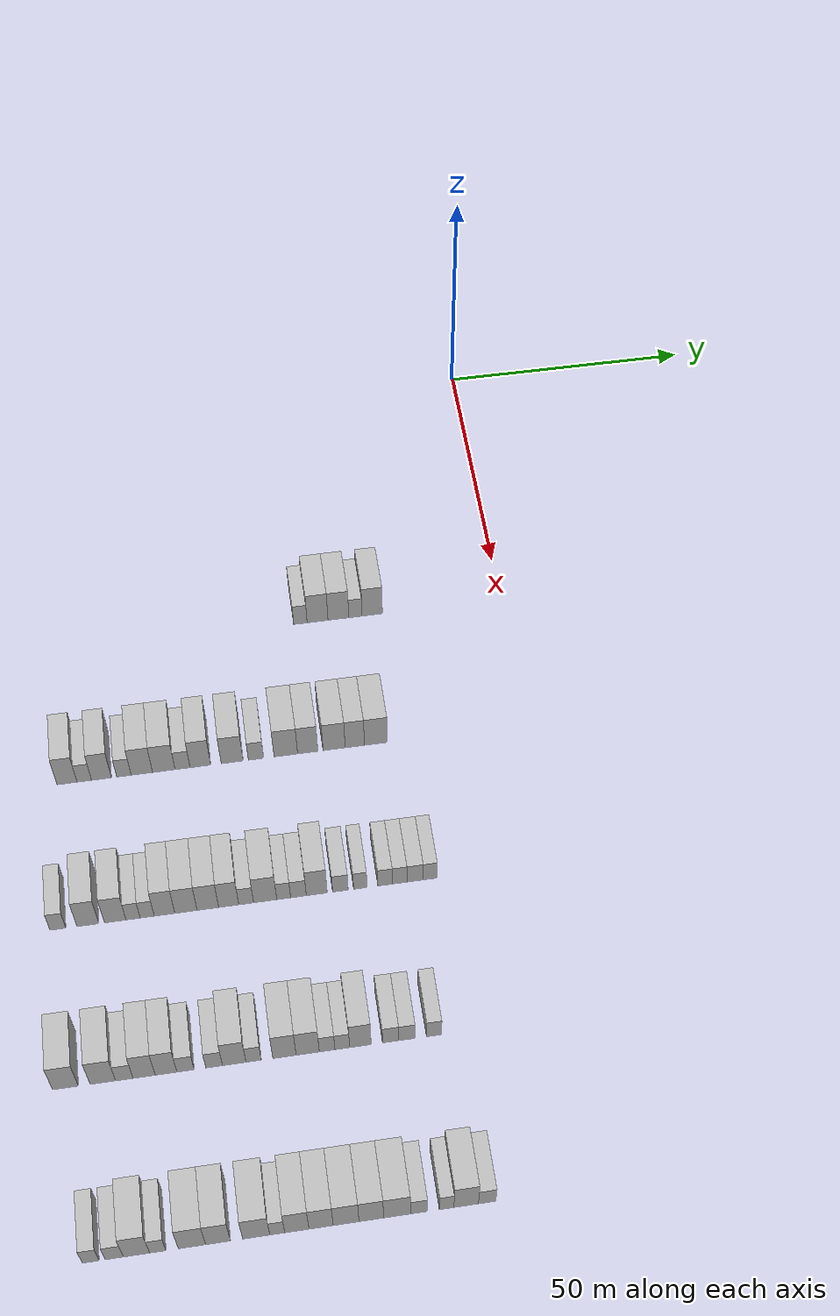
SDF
<sdf version="1.6">
 <world name="default">
  <model name="building_346">
   <static>1</static>
   <pose>55.0000 -40.5637 0 0.000000 0.000000 0.000000</pose>
   <link name="link">
    <pose>0 0 3.00 0 0 0</pose>
    <collision name="collision"><geometry><box><size>10.0000 2.6959 6.0000</size></box></geometry></collision>
    <visual name="visual">
     <cast_shadows>0</cast_shadows>
     <geometry><box><size>10.0000 2.6959 6.0000</size></box></geometry>
     <material>
      <script>
       <uri>model://HANNAS_wall/materials/scripts</uri>
       <uri>model://HANNAS_wall/materials/textures</uri>
       <name>vrc/HANNAS_wall</name>
      </script>
     </material>
    </visual>
   </link>
  </model>
  <model name="building_347">
   <static>1</static>
   <pose>55.0000 -37.1102 0 0.000000 0.000000 0.000000</pose>
   <link name="link">
    <pose>0 0 4.50 0 0 0</pose>
    <collision name="collision"><geometry><box><size>10.0000 4.2112 9.0000</size></box></geometry></collision>
    <visual name="visual">
     <cast_shadows>0</cast_shadows>
     <geometry><box><size>10.0000 4.2112 9.0000</size></box></geometry>
     <material>
      <script>
       <uri>model://HANNAS_wall/materials/scripts</uri>
       <uri>model://HANNAS_wall/materials/textures</uri>
       <name>vrc/HANNAS_wall</name>
      </script>
     </material>
    </visual>
   </link>
  </model>
  <model name="building_348">
   <static>1</static>
   <pose>55.0000 -32.9079 0 0.000000 0.000000 0.000000</pose>
   <link name="link">
    <pose>0 0 4.50 0 0 0</pose>
    <collision name="collision"><geometry><box><size>10.0000 4.1934 9.0000</size></box></geometry></collision>
    <visual name="visual">
     <cast_shadows>0</cast_shadows>
     <geometry><box><size>10.0000 4.1934 9.0000</size></box></geometry>
     <material>
      <script>
       <uri>model://HANNAS_wall/materials/scripts</uri>
       <uri>model://HANNAS_wall/materials/textures</uri>
       <name>vrc/HANNAS_wall</name>
      </script>
     </material>
    </visual>
   </link>
  </model>
  <model name="building_349">
   <static>1</static>
   <pose>55.0000 -29.4674 0 0.000000 0.000000 0.000000</pose>
   <link name="link">
    <pose>0 0 3.00 0 0 0</pose>
    <collision name="collision"><geometry><box><size>10.0000 2.6874 6.0000</size></box></geometry></collision>
    <visual name="visual">
     <cast_shadows>0</cast_shadows>
     <geometry><box><size>10.0000 2.6874 6.0000</size></box></geometry>
     <material>
      <script>
       <uri>model://HANNAS_wall/materials/scripts</uri>
       <uri>model://HANNAS_wall/materials/textures</uri>
       <name>vrc/HANNAS_wall</name>
      </script>
     </material>
    </visual>
   </link>
  </model>
  <model name="building_350">
   <static>1</static>
   <pose>55.0000 -26.0680 0 0.000000 0.000000 0.000000</pose>
   <link name="link">
    <pose>0 0 4.50 0 0 0</pose>
    <collision name="collision"><geometry><box><size>10.0000 4.1113 9.0000</size></box></geometry></collision>
    <visual name="visual">
     <cast_shadows>0</cast_shadows>
     <geometry><box><size>10.0000 4.1113 9.0000</size></box></geometry>
     <material>
      <script>
       <uri>model://HANNAS_wall/materials/scripts</uri>
       <uri>model://HANNAS_wall/materials/textures</uri>
       <name>vrc/HANNAS_wall</name>
      </script>
     </material>
    </visual>
   </link>
  </model>
  <model name="building_565">
   <static>1</static>
   <pose>85.0000 -88.3537 0 0.000000 0.000000 0.000000</pose>
   <link name="link">
    <pose>0 0 4.50 0 0 0</pose>
    <collision name="collision"><geometry><box><size>10.0000 3.7554 9.0000</size></box></geometry></collision>
    <visual name="visual">
     <cast_shadows>0</cast_shadows>
     <geometry><box><size>10.0000 3.7554 9.0000</size></box></geometry>
     <material>
      <script>
       <uri>model://HANNAS_wall/materials/scripts</uri>
       <uri>model://HANNAS_wall/materials/textures</uri>
       <name>vrc/HANNAS_wall</name>
      </script>
     </material>
    </visual>
   </link>
  </model>
  <model name="building_566">
   <static>1</static>
   <pose>85.0000 -85.1108 0 0.000000 0.000000 0.000000</pose>
   <link name="link">
    <pose>0 0 3.00 0 0 0</pose>
    <collision name="collision"><geometry><box><size>10.0000 2.7306 6.0000</size></box></geometry></collision>
    <visual name="visual">
     <cast_shadows>0</cast_shadows>
     <geometry><box><size>10.0000 2.7306 6.0000</size></box></geometry>
     <material>
      <script>
       <uri>model://HANNAS_wall/materials/scripts</uri>
       <uri>model://HANNAS_wall/materials/textures</uri>
       <name>vrc/HANNAS_wall</name>
      </script>
     </material>
    </visual>
   </link>
  </model>
  <model name="building_567">
   <static>1</static>
   <pose>85.0000 -81.8662 0 0.000000 0.000000 0.000000</pose>
   <link name="link">
    <pose>0 0 4.50 0 0 0</pose>
    <collision name="collision"><geometry><box><size>10.0000 3.7585 9.0000</size></box></geometry></collision>
    <visual name="visual">
     <cast_shadows>0</cast_shadows>
     <geometry><box><size>10.0000 3.7585 9.0000</size></box></geometry>
     <material>
      <script>
       <uri>model://HANNAS_wall/materials/scripts</uri>
       <uri>model://HANNAS_wall/materials/textures</uri>
       <name>vrc/HANNAS_wall</name>
      </script>
     </material>
    </visual>
   </link>
  </model>
  <model name="building_568">
   <static>1</static>
   <pose>85.0000 -77.6316 0 0.000000 0.000000 0.000000</pose>
   <link name="link">
    <pose>0 0 3.00 0 0 0</pose>
    <collision name="collision"><geometry><box><size>10.0000 2.7109 6.0000</size></box></geometry></collision>
    <visual name="visual">
     <cast_shadows>0</cast_shadows>
     <geometry><box><size>10.0000 2.7109 6.0000</size></box></geometry>
     <material>
      <script>
       <uri>model://HANNAS_wall/materials/scripts</uri>
       <uri>model://HANNAS_wall/materials/textures</uri>
       <name>vrc/HANNAS_wall</name>
      </script>
     </material>
    </visual>
   </link>
  </model>
  <model name="building_569">
   <static>1</static>
   <pose>85.0000 -74.2416 0 0.000000 0.000000 0.000000</pose>
   <link name="link">
    <pose>0 0 4.50 0 0 0</pose>
    <collision name="collision"><geometry><box><size>10.0000 4.0692 9.0000</size></box></geometry></collision>
    <visual name="visual">
     <cast_shadows>0</cast_shadows>
     <geometry><box><size>10.0000 4.0692 9.0000</size></box></geometry>
     <material>
      <script>
       <uri>model://HANNAS_wall/materials/scripts</uri>
       <uri>model://HANNAS_wall/materials/textures</uri>
       <name>vrc/HANNAS_wall</name>
      </script>
     </material>
    </visual>
   </link>
  </model>
  <model name="building_570">
   <static>1</static>
   <pose>85.0000 -70.0802 0 0.000000 0.000000 0.000000</pose>
   <link name="link">
    <pose>0 0 4.50 0 0 0</pose>
    <collision name="collision"><geometry><box><size>10.0000 4.2537 9.0000</size></box></geometry></collision>
    <visual name="visual">
     <cast_shadows>0</cast_shadows>
     <geometry><box><size>10.0000 4.2537 9.0000</size></box></geometry>
     <material>
      <script>
       <uri>model://HANNAS_wall/materials/scripts</uri>
       <uri>model://HANNAS_wall/materials/textures</uri>
       <name>vrc/HANNAS_wall</name>
      </script>
     </material>
    </visual>
   </link>
  </model>
  <model name="building_571">
   <static>1</static>
   <pose>85.0000 -66.5312 0 0.000000 0.000000 0.000000</pose>
   <link name="link">
    <pose>0 0 3.00 0 0 0</pose>
    <collision name="collision"><geometry><box><size>10.0000 2.8442 6.0000</size></box></geometry></collision>
    <visual name="visual">
     <cast_shadows>0</cast_shadows>
     <geometry><box><size>10.0000 2.8442 6.0000</size></box></geometry>
     <material>
      <script>
       <uri>model://HANNAS_wall/materials/scripts</uri>
       <uri>model://HANNAS_wall/materials/textures</uri>
       <name>vrc/HANNAS_wall</name>
      </script>
     </material>
    </visual>
   </link>
  </model>
  <model name="building_572">
   <static>1</static>
   <pose>85.0000 -63.1409 0 0.000000 0.000000 0.000000</pose>
   <link name="link">
    <pose>0 0 4.50 0 0 0</pose>
    <collision name="collision"><geometry><box><size>10.0000 3.9364 9.0000</size></box></geometry></collision>
    <visual name="visual">
     <cast_shadows>0</cast_shadows>
     <geometry><box><size>10.0000 3.9364 9.0000</size></box></geometry>
     <material>
      <script>
       <uri>model://HANNAS_wall/materials/scripts</uri>
       <uri>model://HANNAS_wall/materials/textures</uri>
       <name>vrc/HANNAS_wall</name>
      </script>
     </material>
    </visual>
   </link>
  </model>
  <model name="building_573">
   <static>1</static>
   <pose>85.0000 -57.0785 0 0.000000 0.000000 0.000000</pose>
   <link name="link">
    <pose>0 0 4.50 0 0 0</pose>
    <collision name="collision"><geometry><box><size>10.0000 4.1883 9.0000</size></box></geometry></collision>
    <visual name="visual">
     <cast_shadows>0</cast_shadows>
     <geometry><box><size>10.0000 4.1883 9.0000</size></box></geometry>
     <material>
      <script>
       <uri>model://HANNAS_wall/materials/scripts</uri>
       <uri>model://HANNAS_wall/materials/textures</uri>
       <name>vrc/HANNAS_wall</name>
      </script>
     </material>
    </visual>
   </link>
  </model>
  <model name="building_574">
   <static>1</static>
   <pose>85.0000 -52.5290 0 0.000000 0.000000 0.000000</pose>
   <link name="link">
    <pose>0 0 3.00 0 0 0</pose>
    <collision name="collision"><geometry><box><size>10.0000 2.9108 6.0000</size></box></geometry></collision>
    <visual name="visual">
     <cast_shadows>0</cast_shadows>
     <geometry><box><size>10.0000 2.9108 6.0000</size></box></geometry>
     <material>
      <script>
       <uri>model://HANNAS_wall/materials/scripts</uri>
       <uri>model://HANNAS_wall/materials/textures</uri>
       <name>vrc/HANNAS_wall</name>
      </script>
     </material>
    </visual>
   </link>
  </model>
  <model name="building_575">
   <static>1</static>
   <pose>85.0000 -46.8241 0 0.000000 0.000000 0.000000</pose>
   <link name="link">
    <pose>0 0 4.50 0 0 0</pose>
    <collision name="collision"><geometry><box><size>10.0000 4.4990 9.0000</size></box></geometry></collision>
    <visual name="visual">
     <cast_shadows>0</cast_shadows>
     <geometry><box><size>10.0000 4.4990 9.0000</size></box></geometry>
     <material>
      <script>
       <uri>model://HANNAS_wall/materials/scripts</uri>
       <uri>model://HANNAS_wall/materials/textures</uri>
       <name>vrc/HANNAS_wall</name>
      </script>
     </material>
    </visual>
   </link>
  </model>
  <model name="building_576">
   <static>1</static>
   <pose>85.0000 -42.6220 0 0.000000 0.000000 0.000000</pose>
   <link name="link">
    <pose>0 0 4.50 0 0 0</pose>
    <collision name="collision"><geometry><box><size>10.0000 3.9051 9.0000</size></box></geometry></collision>
    <visual name="visual">
     <cast_shadows>0</cast_shadows>
     <geometry><box><size>10.0000 3.9051 9.0000</size></box></geometry>
     <material>
      <script>
       <uri>model://HANNAS_wall/materials/scripts</uri>
       <uri>model://HANNAS_wall/materials/textures</uri>
       <name>vrc/HANNAS_wall</name>
      </script>
     </material>
    </visual>
   </link>
  </model>
  <model name="building_577">
   <static>1</static>
   <pose>85.0000 -37.5436 0 0.000000 0.000000 0.000000</pose>
   <link name="link">
    <pose>0 0 4.50 0 0 0</pose>
    <collision name="collision"><geometry><box><size>10.0000 4.2519 9.0000</size></box></geometry></collision>
    <visual name="visual">
     <cast_shadows>0</cast_shadows>
     <geometry><box><size>10.0000 4.2519 9.0000</size></box></geometry>
     <material>
      <script>
       <uri>model://HANNAS_wall/materials/scripts</uri>
       <uri>model://HANNAS_wall/materials/textures</uri>
       <name>vrc/HANNAS_wall</name>
      </script>
     </material>
    </visual>
   </link>
  </model>
  <model name="building_578">
   <static>1</static>
   <pose>85.0000 -33.5626 0 0.000000 0.000000 0.000000</pose>
   <link name="link">
    <pose>0 0 4.50 0 0 0</pose>
    <collision name="collision"><geometry><box><size>10.0000 3.7102 9.0000</size></box></geometry></collision>
    <visual name="visual">
     <cast_shadows>0</cast_shadows>
     <geometry><box><size>10.0000 3.7102 9.0000</size></box></geometry>
     <material>
      <script>
       <uri>model://HANNAS_wall/materials/scripts</uri>
       <uri>model://HANNAS_wall/materials/textures</uri>
       <name>vrc/HANNAS_wall</name>
      </script>
     </material>
    </visual>
   </link>
  </model>
  <model name="building_579">
   <static>1</static>
   <pose>85.0000 -29.5006 0 0.000000 0.000000 0.000000</pose>
   <link name="link">
    <pose>0 0 4.50 0 0 0</pose>
    <collision name="collision"><geometry><box><size>10.0000 4.4138 9.0000</size></box></geometry></collision>
    <visual name="visual">
     <cast_shadows>0</cast_shadows>
     <geometry><box><size>10.0000 4.4138 9.0000</size></box></geometry>
     <material>
      <script>
       <uri>model://HANNAS_wall/materials/scripts</uri>
       <uri>model://HANNAS_wall/materials/textures</uri>
       <name>vrc/HANNAS_wall</name>
      </script>
     </material>
    </visual>
   </link>
  </model>
  <model name="building_805">
   <static>1</static>
   <pose>115.0000 -91.3282 0 0.000000 0.000000 0.000000</pose>
   <link name="link">
    <pose>0 0 3.00 0 0 0</pose>
    <collision name="collision"><geometry><box><size>10.0000 2.8393 6.0000</size></box></geometry></collision>
    <visual name="visual">
     <cast_shadows>0</cast_shadows>
     <geometry><box><size>10.0000 2.8393 6.0000</size></box></geometry>
     <material>
      <script>
       <uri>model://HANNAS_wall/materials/scripts</uri>
       <uri>model://HANNAS_wall/materials/textures</uri>
       <name>vrc/HANNAS_wall</name>
      </script>
     </material>
    </visual>
   </link>
  </model>
  <model name="building_806">
   <static>1</static>
   <pose>115.0000 -85.9426 0 0.000000 0.000000 0.000000</pose>
   <link name="link">
    <pose>0 0 4.50 0 0 0</pose>
    <collision name="collision"><geometry><box><size>10.0000 3.9321 9.0000</size></box></geometry></collision>
    <visual name="visual">
     <cast_shadows>0</cast_shadows>
     <geometry><box><size>10.0000 3.9321 9.0000</size></box></geometry>
     <material>
      <script>
       <uri>model://HANNAS_wall/materials/scripts</uri>
       <uri>model://HANNAS_wall/materials/textures</uri>
       <name>vrc/HANNAS_wall</name>
      </script>
     </material>
    </visual>
   </link>
  </model>
  <model name="building_807">
   <static>1</static>
   <pose>115.0000 -81.0414 0 0.000000 0.000000 0.000000</pose>
   <link name="link">
    <pose>0 0 4.50 0 0 0</pose>
    <collision name="collision"><geometry><box><size>10.0000 3.8702 9.0000</size></box></geometry></collision>
    <visual name="visual">
     <cast_shadows>0</cast_shadows>
     <geometry><box><size>10.0000 3.8702 9.0000</size></box></geometry>
     <material>
      <script>
       <uri>model://HANNAS_wall/materials/scripts</uri>
       <uri>model://HANNAS_wall/materials/textures</uri>
       <name>vrc/HANNAS_wall</name>
      </script>
     </material>
    </visual>
   </link>
  </model>
  <model name="building_808">
   <static>1</static>
   <pose>115.0000 -77.8341 0 0.000000 0.000000 0.000000</pose>
   <link name="link">
    <pose>0 0 3.00 0 0 0</pose>
    <collision name="collision"><geometry><box><size>10.0000 2.5444 6.0000</size></box></geometry></collision>
    <visual name="visual">
     <cast_shadows>0</cast_shadows>
     <geometry><box><size>10.0000 2.5444 6.0000</size></box></geometry>
     <material>
      <script>
       <uri>model://HANNAS_wall/materials/scripts</uri>
       <uri>model://HANNAS_wall/materials/textures</uri>
       <name>vrc/HANNAS_wall</name>
      </script>
     </material>
    </visual>
   </link>
  </model>
  <model name="building_809">
   <static>1</static>
   <pose>115.0000 -75.2893 0 0.000000 0.000000 0.000000</pose>
   <link name="link">
    <pose>0 0 3.00 0 0 0</pose>
    <collision name="collision"><geometry><box><size>10.0000 2.5452 6.0000</size></box></geometry></collision>
    <visual name="visual">
     <cast_shadows>0</cast_shadows>
     <geometry><box><size>10.0000 2.5452 6.0000</size></box></geometry>
     <material>
      <script>
       <uri>model://HANNAS_wall/materials/scripts</uri>
       <uri>model://HANNAS_wall/materials/textures</uri>
       <name>vrc/HANNAS_wall</name>
      </script>
     </material>
    </visual>
   </link>
  </model>
  <model name="building_810">
   <static>1</static>
   <pose>115.0000 -72.1649 0 0.000000 0.000000 0.000000</pose>
   <link name="link">
    <pose>0 0 4.50 0 0 0</pose>
    <collision name="collision"><geometry><box><size>10.0000 3.7036 9.0000</size></box></geometry></collision>
    <visual name="visual">
     <cast_shadows>0</cast_shadows>
     <geometry><box><size>10.0000 3.7036 9.0000</size></box></geometry>
     <material>
      <script>
       <uri>model://HANNAS_wall/materials/scripts</uri>
       <uri>model://HANNAS_wall/materials/textures</uri>
       <name>vrc/HANNAS_wall</name>
      </script>
     </material>
    </visual>
   </link>
  </model>
  <model name="building_811">
   <static>1</static>
   <pose>115.0000 -68.3002 0 0.000000 0.000000 0.000000</pose>
   <link name="link">
    <pose>0 0 4.50 0 0 0</pose>
    <collision name="collision"><geometry><box><size>10.0000 4.0259 9.0000</size></box></geometry></collision>
    <visual name="visual">
     <cast_shadows>0</cast_shadows>
     <geometry><box><size>10.0000 4.0259 9.0000</size></box></geometry>
     <material>
      <script>
       <uri>model://HANNAS_wall/materials/scripts</uri>
       <uri>model://HANNAS_wall/materials/textures</uri>
       <name>vrc/HANNAS_wall</name>
      </script>
     </material>
    </visual>
   </link>
  </model>
  <model name="building_812">
   <static>1</static>
   <pose>115.0000 -64.3250 0 0.000000 0.000000 0.000000</pose>
   <link name="link">
    <pose>0 0 4.50 0 0 0</pose>
    <collision name="collision"><geometry><box><size>10.0000 3.9246 9.0000</size></box></geometry></collision>
    <visual name="visual">
     <cast_shadows>0</cast_shadows>
     <geometry><box><size>10.0000 3.9246 9.0000</size></box></geometry>
     <material>
      <script>
       <uri>model://HANNAS_wall/materials/scripts</uri>
       <uri>model://HANNAS_wall/materials/textures</uri>
       <name>vrc/HANNAS_wall</name>
      </script>
     </material>
    </visual>
   </link>
  </model>
  <model name="building_813">
   <static>1</static>
   <pose>115.0000 -60.5498 0 0.000000 0.000000 0.000000</pose>
   <link name="link">
    <pose>0 0 4.50 0 0 0</pose>
    <collision name="collision"><geometry><box><size>10.0000 3.6258 9.0000</size></box></geometry></collision>
    <visual name="visual">
     <cast_shadows>0</cast_shadows>
     <geometry><box><size>10.0000 3.6258 9.0000</size></box></geometry>
     <material>
      <script>
       <uri>model://HANNAS_wall/materials/scripts</uri>
       <uri>model://HANNAS_wall/materials/textures</uri>
       <name>vrc/HANNAS_wall</name>
      </script>
     </material>
    </visual>
   </link>
  </model>
  <model name="building_814">
   <static>1</static>
   <pose>115.0000 -57.3848 0 0.000000 0.000000 0.000000</pose>
   <link name="link">
    <pose>0 0 3.00 0 0 0</pose>
    <collision name="collision"><geometry><box><size>10.0000 2.7041 6.0000</size></box></geometry></collision>
    <visual name="visual">
     <cast_shadows>0</cast_shadows>
     <geometry><box><size>10.0000 2.7041 6.0000</size></box></geometry>
     <material>
      <script>
       <uri>model://HANNAS_wall/materials/scripts</uri>
       <uri>model://HANNAS_wall/materials/textures</uri>
       <name>vrc/HANNAS_wall</name>
      </script>
     </material>
    </visual>
   </link>
  </model>
  <model name="building_815">
   <static>1</static>
   <pose>115.0000 -53.9236 0 0.000000 0.000000 0.000000</pose>
   <link name="link">
    <pose>0 0 4.50 0 0 0</pose>
    <collision name="collision"><geometry><box><size>10.0000 4.2183 9.0000</size></box></geometry></collision>
    <visual name="visual">
     <cast_shadows>0</cast_shadows>
     <geometry><box><size>10.0000 4.2183 9.0000</size></box></geometry>
     <material>
      <script>
       <uri>model://HANNAS_wall/materials/scripts</uri>
       <uri>model://HANNAS_wall/materials/textures</uri>
       <name>vrc/HANNAS_wall</name>
      </script>
     </material>
    </visual>
   </link>
  </model>
  <model name="building_816">
   <static>1</static>
   <pose>115.0000 -50.5525 0 0.000000 0.000000 0.000000</pose>
   <link name="link">
    <pose>0 0 3.00 0 0 0</pose>
    <collision name="collision"><geometry><box><size>10.0000 2.5240 6.0000</size></box></geometry></collision>
    <visual name="visual">
     <cast_shadows>0</cast_shadows>
     <geometry><box><size>10.0000 2.5240 6.0000</size></box></geometry>
     <material>
      <script>
       <uri>model://HANNAS_wall/materials/scripts</uri>
       <uri>model://HANNAS_wall/materials/textures</uri>
       <name>vrc/HANNAS_wall</name>
      </script>
     </material>
    </visual>
   </link>
  </model>
  <model name="building_817">
   <static>1</static>
   <pose>115.0000 -47.8558 0 0.000000 0.000000 0.000000</pose>
   <link name="link">
    <pose>0 0 3.00 0 0 0</pose>
    <collision name="collision"><geometry><box><size>10.0000 2.8695 6.0000</size></box></geometry></collision>
    <visual name="visual">
     <cast_shadows>0</cast_shadows>
     <geometry><box><size>10.0000 2.8695 6.0000</size></box></geometry>
     <material>
      <script>
       <uri>model://HANNAS_wall/materials/scripts</uri>
       <uri>model://HANNAS_wall/materials/textures</uri>
       <name>vrc/HANNAS_wall</name>
      </script>
     </material>
    </visual>
   </link>
  </model>
  <model name="building_818">
   <static>1</static>
   <pose>115.0000 -44.5114 0 0.000000 0.000000 0.000000</pose>
   <link name="link">
    <pose>0 0 4.50 0 0 0</pose>
    <collision name="collision"><geometry><box><size>10.0000 3.8192 9.0000</size></box></geometry></collision>
    <visual name="visual">
     <cast_shadows>0</cast_shadows>
     <geometry><box><size>10.0000 3.8192 9.0000</size></box></geometry>
     <material>
      <script>
       <uri>model://HANNAS_wall/materials/scripts</uri>
       <uri>model://HANNAS_wall/materials/textures</uri>
       <name>vrc/HANNAS_wall</name>
      </script>
     </material>
    </visual>
   </link>
  </model>
  <model name="building_819">
   <static>1</static>
   <pose>115.0000 -40.1752 0 0.000000 0.000000 0.000000</pose>
   <link name="link">
    <pose>0 0 3.00 0 0 0</pose>
    <collision name="collision"><geometry><box><size>10.0000 2.8533 6.0000</size></box></geometry></collision>
    <visual name="visual">
     <cast_shadows>0</cast_shadows>
     <geometry><box><size>10.0000 2.8533 6.0000</size></box></geometry>
     <material>
      <script>
       <uri>model://HANNAS_wall/materials/scripts</uri>
       <uri>model://HANNAS_wall/materials/textures</uri>
       <name>vrc/HANNAS_wall</name>
      </script>
     </material>
    </visual>
   </link>
  </model>
  <model name="building_820">
   <static>1</static>
   <pose>115.0000 -36.5209 0 0.000000 0.000000 0.000000</pose>
   <link name="link">
    <pose>0 0 3.00 0 0 0</pose>
    <collision name="collision"><geometry><box><size>10.0000 2.4553 6.0000</size></box></geometry></collision>
    <visual name="visual">
     <cast_shadows>0</cast_shadows>
     <geometry><box><size>10.0000 2.4553 6.0000</size></box></geometry>
     <material>
      <script>
       <uri>model://HANNAS_wall/materials/scripts</uri>
       <uri>model://HANNAS_wall/materials/textures</uri>
       <name>vrc/HANNAS_wall</name>
      </script>
     </material>
    </visual>
   </link>
  </model>
  <model name="building_821">
   <static>1</static>
   <pose>115.0000 -31.9481 0 0.000000 0.000000 0.000000</pose>
   <link name="link">
    <pose>0 0 3.00 0 0 0</pose>
    <collision name="collision"><geometry><box><size>10.0000 2.6904 6.0000</size></box></geometry></collision>
    <visual name="visual">
     <cast_shadows>0</cast_shadows>
     <geometry><box><size>10.0000 2.6904 6.0000</size></box></geometry>
     <material>
      <script>
       <uri>model://HANNAS_wall/materials/scripts</uri>
       <uri>model://HANNAS_wall/materials/textures</uri>
       <name>vrc/HANNAS_wall</name>
      </script>
     </material>
    </visual>
   </link>
  </model>
  <model name="building_822">
   <static>1</static>
   <pose>115.0000 -29.2582 0 0.000000 0.000000 0.000000</pose>
   <link name="link">
    <pose>0 0 3.00 0 0 0</pose>
    <collision name="collision"><geometry><box><size>10.0000 2.6895 6.0000</size></box></geometry></collision>
    <visual name="visual">
     <cast_shadows>0</cast_shadows>
     <geometry><box><size>10.0000 2.6895 6.0000</size></box></geometry>
     <material>
      <script>
       <uri>model://HANNAS_wall/materials/scripts</uri>
       <uri>model://HANNAS_wall/materials/textures</uri>
       <name>vrc/HANNAS_wall</name>
      </script>
     </material>
    </visual>
   </link>
  </model>
  <model name="building_823">
   <static>1</static>
   <pose>115.0000 -26.4314 0 0.000000 0.000000 0.000000</pose>
   <link name="link">
    <pose>0 0 3.00 0 0 0</pose>
    <collision name="collision"><geometry><box><size>10.0000 2.9640 6.0000</size></box></geometry></collision>
    <visual name="visual">
     <cast_shadows>0</cast_shadows>
     <geometry><box><size>10.0000 2.9640 6.0000</size></box></geometry>
     <material>
      <script>
       <uri>model://HANNAS_wall/materials/scripts</uri>
       <uri>model://HANNAS_wall/materials/textures</uri>
       <name>vrc/HANNAS_wall</name>
      </script>
     </material>
    </visual>
   </link>
  </model>
  <model name="building_824">
   <static>1</static>
   <pose>115.0000 -23.6730 0 0.000000 0.000000 0.000000</pose>
   <link name="link">
    <pose>0 0 3.00 0 0 0</pose>
    <collision name="collision"><geometry><box><size>10.0000 2.5528 6.0000</size></box></geometry></collision>
    <visual name="visual">
     <cast_shadows>0</cast_shadows>
     <geometry><box><size>10.0000 2.5528 6.0000</size></box></geometry>
     <material>
      <script>
       <uri>model://HANNAS_wall/materials/scripts</uri>
       <uri>model://HANNAS_wall/materials/textures</uri>
       <name>vrc/HANNAS_wall</name>
      </script>
     </material>
    </visual>
   </link>
  </model>
  <model name="building_1038">
   <static>1</static>
   <pose>145.0000 -91.3041 0 0.000000 0.000000 0.000000</pose>
   <link name="link">
    <pose>0 0 4.50 0 0 0</pose>
    <collision name="collision"><geometry><box><size>10.0000 4.3812 9.0000</size></box></geometry></collision>
    <visual name="visual">
     <cast_shadows>0</cast_shadows>
     <geometry><box><size>10.0000 4.3812 9.0000</size></box></geometry>
     <material>
      <script>
       <uri>model://HANNAS_wall/materials/scripts</uri>
       <uri>model://HANNAS_wall/materials/textures</uri>
       <name>vrc/HANNAS_wall</name>
      </script>
     </material>
    </visual>
   </link>
  </model>
  <model name="building_1039">
   <static>1</static>
   <pose>145.0000 -84.9383 0 0.000000 0.000000 0.000000</pose>
   <link name="link">
    <pose>0 0 4.50 0 0 0</pose>
    <collision name="collision"><geometry><box><size>10.0000 4.3505 9.0000</size></box></geometry></collision>
    <visual name="visual">
     <cast_shadows>0</cast_shadows>
     <geometry><box><size>10.0000 4.3505 9.0000</size></box></geometry>
     <material>
      <script>
       <uri>model://HANNAS_wall/materials/scripts</uri>
       <uri>model://HANNAS_wall/materials/textures</uri>
       <name>vrc/HANNAS_wall</name>
      </script>
     </material>
    </visual>
   </link>
  </model>
  <model name="building_1040">
   <static>1</static>
   <pose>145.0000 -81.2687 0 0.000000 0.000000 0.000000</pose>
   <link name="link">
    <pose>0 0 3.00 0 0 0</pose>
    <collision name="collision"><geometry><box><size>10.0000 2.9886 6.0000</size></box></geometry></collision>
    <visual name="visual">
     <cast_shadows>0</cast_shadows>
     <geometry><box><size>10.0000 2.9886 6.0000</size></box></geometry>
     <material>
      <script>
       <uri>model://HANNAS_wall/materials/scripts</uri>
       <uri>model://HANNAS_wall/materials/textures</uri>
       <name>vrc/HANNAS_wall</name>
      </script>
     </material>
    </visual>
   </link>
  </model>
  <model name="building_1041">
   <static>1</static>
   <pose>145.0000 -77.8774 0 0.000000 0.000000 0.000000</pose>
   <link name="link">
    <pose>0 0 4.50 0 0 0</pose>
    <collision name="collision"><geometry><box><size>10.0000 3.7940 9.0000</size></box></geometry></collision>
    <visual name="visual">
     <cast_shadows>0</cast_shadows>
     <geometry><box><size>10.0000 3.7940 9.0000</size></box></geometry>
     <material>
      <script>
       <uri>model://HANNAS_wall/materials/scripts</uri>
       <uri>model://HANNAS_wall/materials/textures</uri>
       <name>vrc/HANNAS_wall</name>
      </script>
     </material>
    </visual>
   </link>
  </model>
  <model name="building_1042">
   <static>1</static>
   <pose>145.0000 -74.1296 0 0.000000 0.000000 0.000000</pose>
   <link name="link">
    <pose>0 0 4.50 0 0 0</pose>
    <collision name="collision"><geometry><box><size>10.0000 3.7015 9.0000</size></box></geometry></collision>
    <visual name="visual">
     <cast_shadows>0</cast_shadows>
     <geometry><box><size>10.0000 3.7015 9.0000</size></box></geometry>
     <material>
      <script>
       <uri>model://HANNAS_wall/materials/scripts</uri>
       <uri>model://HANNAS_wall/materials/textures</uri>
       <name>vrc/HANNAS_wall</name>
      </script>
     </material>
    </visual>
   </link>
  </model>
  <model name="building_1043">
   <static>1</static>
   <pose>145.0000 -70.7929 0 0.000000 0.000000 0.000000</pose>
   <link name="link">
    <pose>0 0 3.00 0 0 0</pose>
    <collision name="collision"><geometry><box><size>10.0000 2.9720 6.0000</size></box></geometry></collision>
    <visual name="visual">
     <cast_shadows>0</cast_shadows>
     <geometry><box><size>10.0000 2.9720 6.0000</size></box></geometry>
     <material>
      <script>
       <uri>model://HANNAS_wall/materials/scripts</uri>
       <uri>model://HANNAS_wall/materials/textures</uri>
       <name>vrc/HANNAS_wall</name>
      </script>
     </material>
    </visual>
   </link>
  </model>
  <model name="building_1044">
   <static>1</static>
   <pose>145.0000 -65.8692 0 0.000000 0.000000 0.000000</pose>
   <link name="link">
    <pose>0 0 3.00 0 0 0</pose>
    <collision name="collision"><geometry><box><size>10.0000 2.8753 6.0000</size></box></geometry></collision>
    <visual name="visual">
     <cast_shadows>0</cast_shadows>
     <geometry><box><size>10.0000 2.8753 6.0000</size></box></geometry>
     <material>
      <script>
       <uri>model://HANNAS_wall/materials/scripts</uri>
       <uri>model://HANNAS_wall/materials/textures</uri>
       <name>vrc/HANNAS_wall</name>
      </script>
     </material>
    </visual>
   </link>
  </model>
  <model name="building_1045">
   <static>1</static>
   <pose>145.0000 -62.4110 0 0.000000 0.000000 0.000000</pose>
   <link name="link">
    <pose>0 0 4.50 0 0 0</pose>
    <collision name="collision"><geometry><box><size>10.0000 4.0412 9.0000</size></box></geometry></collision>
    <visual name="visual">
     <cast_shadows>0</cast_shadows>
     <geometry><box><size>10.0000 4.0412 9.0000</size></box></geometry>
     <material>
      <script>
       <uri>model://HANNAS_wall/materials/scripts</uri>
       <uri>model://HANNAS_wall/materials/textures</uri>
       <name>vrc/HANNAS_wall</name>
      </script>
     </material>
    </visual>
   </link>
  </model>
  <model name="building_1046">
   <static>1</static>
   <pose>145.0000 -59.0635 0 0.000000 0.000000 0.000000</pose>
   <link name="link">
    <pose>0 0 3.00 0 0 0</pose>
    <collision name="collision"><geometry><box><size>10.0000 2.6537 6.0000</size></box></geometry></collision>
    <visual name="visual">
     <cast_shadows>0</cast_shadows>
     <geometry><box><size>10.0000 2.6537 6.0000</size></box></geometry>
     <material>
      <script>
       <uri>model://HANNAS_wall/materials/scripts</uri>
       <uri>model://HANNAS_wall/materials/textures</uri>
       <name>vrc/HANNAS_wall</name>
      </script>
     </material>
    </visual>
   </link>
  </model>
  <model name="building_1047">
   <static>1</static>
   <pose>145.0000 -53.7211 0 0.000000 0.000000 0.000000</pose>
   <link name="link">
    <pose>0 0 4.50 0 0 0</pose>
    <collision name="collision"><geometry><box><size>10.0000 4.0311 9.0000</size></box></geometry></collision>
    <visual name="visual">
     <cast_shadows>0</cast_shadows>
     <geometry><box><size>10.0000 4.0311 9.0000</size></box></geometry>
     <material>
      <script>
       <uri>model://HANNAS_wall/materials/scripts</uri>
       <uri>model://HANNAS_wall/materials/textures</uri>
       <name>vrc/HANNAS_wall</name>
      </script>
     </material>
    </visual>
   </link>
  </model>
  <model name="building_1048">
   <static>1</static>
   <pose>145.0000 -49.6937 0 0.000000 0.000000 0.000000</pose>
   <link name="link">
    <pose>0 0 4.50 0 0 0</pose>
    <collision name="collision"><geometry><box><size>10.0000 4.0237 9.0000</size></box></geometry></collision>
    <visual name="visual">
     <cast_shadows>0</cast_shadows>
     <geometry><box><size>10.0000 4.0237 9.0000</size></box></geometry>
     <material>
      <script>
       <uri>model://HANNAS_wall/materials/scripts</uri>
       <uri>model://HANNAS_wall/materials/textures</uri>
       <name>vrc/HANNAS_wall</name>
      </script>
     </material>
    </visual>
   </link>
  </model>
  <model name="building_1049">
   <static>1</static>
   <pose>145.0000 -46.3277 0 0.000000 0.000000 0.000000</pose>
   <link name="link">
    <pose>0 0 3.00 0 0 0</pose>
    <collision name="collision"><geometry><box><size>10.0000 2.7082 6.0000</size></box></geometry></collision>
    <visual name="visual">
     <cast_shadows>0</cast_shadows>
     <geometry><box><size>10.0000 2.7082 6.0000</size></box></geometry>
     <material>
      <script>
       <uri>model://HANNAS_wall/materials/scripts</uri>
       <uri>model://HANNAS_wall/materials/textures</uri>
       <name>vrc/HANNAS_wall</name>
      </script>
     </material>
    </visual>
   </link>
  </model>
  <model name="building_1050">
   <static>1</static>
   <pose>145.0000 -43.6924 0 0.000000 0.000000 0.000000</pose>
   <link name="link">
    <pose>0 0 3.00 0 0 0</pose>
    <collision name="collision"><geometry><box><size>10.0000 2.5626 6.0000</size></box></geometry></collision>
    <visual name="visual">
     <cast_shadows>0</cast_shadows>
     <geometry><box><size>10.0000 2.5626 6.0000</size></box></geometry>
     <material>
      <script>
       <uri>model://HANNAS_wall/materials/scripts</uri>
       <uri>model://HANNAS_wall/materials/textures</uri>
       <name>vrc/HANNAS_wall</name>
      </script>
     </material>
    </visual>
   </link>
  </model>
  <model name="building_1051">
   <static>1</static>
   <pose>145.0000 -40.5372 0 0.000000 0.000000 0.000000</pose>
   <link name="link">
    <pose>0 0 4.50 0 0 0</pose>
    <collision name="collision"><geometry><box><size>10.0000 3.7478 9.0000</size></box></geometry></collision>
    <visual name="visual">
     <cast_shadows>0</cast_shadows>
     <geometry><box><size>10.0000 3.7478 9.0000</size></box></geometry>
     <material>
      <script>
       <uri>model://HANNAS_wall/materials/scripts</uri>
       <uri>model://HANNAS_wall/materials/textures</uri>
       <name>vrc/HANNAS_wall</name>
      </script>
     </material>
    </visual>
   </link>
  </model>
  <model name="building_1052">
   <static>1</static>
   <pose>145.0000 -35.2412 0 0.000000 0.000000 0.000000</pose>
   <link name="link">
    <pose>0 0 3.00 0 0 0</pose>
    <collision name="collision"><geometry><box><size>10.0000 2.8441 6.0000</size></box></geometry></collision>
    <visual name="visual">
     <cast_shadows>0</cast_shadows>
     <geometry><box><size>10.0000 2.8441 6.0000</size></box></geometry>
     <material>
      <script>
       <uri>model://HANNAS_wall/materials/scripts</uri>
       <uri>model://HANNAS_wall/materials/textures</uri>
       <name>vrc/HANNAS_wall</name>
      </script>
     </material>
    </visual>
   </link>
  </model>
  <model name="building_1053">
   <static>1</static>
   <pose>145.0000 -32.3973 0 0.000000 0.000000 0.000000</pose>
   <link name="link">
    <pose>0 0 3.00 0 0 0</pose>
    <collision name="collision"><geometry><box><size>10.0000 2.8436 6.0000</size></box></geometry></collision>
    <visual name="visual">
     <cast_shadows>0</cast_shadows>
     <geometry><box><size>10.0000 2.8436 6.0000</size></box></geometry>
     <material>
      <script>
       <uri>model://HANNAS_wall/materials/scripts</uri>
       <uri>model://HANNAS_wall/materials/textures</uri>
       <name>vrc/HANNAS_wall</name>
      </script>
     </material>
    </visual>
   </link>
  </model>
  <model name="building_1054">
   <static>1</static>
   <pose>145.0000 -27.6556 0 0.000000 0.000000 0.000000</pose>
   <link name="link">
    <pose>0 0 3.00 0 0 0</pose>
    <collision name="collision"><geometry><box><size>10.0000 2.6397 6.0000</size></box></geometry></collision>
    <visual name="visual">
     <cast_shadows>0</cast_shadows>
     <geometry><box><size>10.0000 2.6397 6.0000</size></box></geometry>
     <material>
      <script>
       <uri>model://HANNAS_wall/materials/scripts</uri>
       <uri>model://HANNAS_wall/materials/textures</uri>
       <name>vrc/HANNAS_wall</name>
      </script>
     </material>
    </visual>
   </link>
  </model>
  <model name="building_1244">
   <static>1</static>
   <pose>175.0000 -88.5443 0 0.000000 0.000000 0.000000</pose>
   <link name="link">
    <pose>0 0 3.00 0 0 0</pose>
    <collision name="collision"><geometry><box><size>10.0000 2.6979 6.0000</size></box></geometry></collision>
    <visual name="visual">
     <cast_shadows>0</cast_shadows>
     <geometry><box><size>10.0000 2.6979 6.0000</size></box></geometry>
     <material>
      <script>
       <uri>model://HANNAS_wall/materials/scripts</uri>
       <uri>model://HANNAS_wall/materials/textures</uri>
       <name>vrc/HANNAS_wall</name>
      </script>
     </material>
    </visual>
   </link>
  </model>
  <model name="building_1245">
   <static>1</static>
   <pose>175.0000 -84.7412 0 0.000000 0.000000 0.000000</pose>
   <link name="link">
    <pose>0 0 3.00 0 0 0</pose>
    <collision name="collision"><geometry><box><size>10.0000 2.9083 6.0000</size></box></geometry></collision>
    <visual name="visual">
     <cast_shadows>0</cast_shadows>
     <geometry><box><size>10.0000 2.9083 6.0000</size></box></geometry>
     <material>
      <script>
       <uri>model://HANNAS_wall/materials/scripts</uri>
       <uri>model://HANNAS_wall/materials/textures</uri>
       <name>vrc/HANNAS_wall</name>
      </script>
     </material>
    </visual>
   </link>
  </model>
  <model name="building_1246">
   <static>1</static>
   <pose>175.0000 -81.1575 0 0.000000 0.000000 0.000000</pose>
   <link name="link">
    <pose>0 0 4.50 0 0 0</pose>
    <collision name="collision"><geometry><box><size>10.0000 4.2591 9.0000</size></box></geometry></collision>
    <visual name="visual">
     <cast_shadows>0</cast_shadows>
     <geometry><box><size>10.0000 4.2591 9.0000</size></box></geometry>
     <material>
      <script>
       <uri>model://HANNAS_wall/materials/scripts</uri>
       <uri>model://HANNAS_wall/materials/textures</uri>
       <name>vrc/HANNAS_wall</name>
      </script>
     </material>
    </visual>
   </link>
  </model>
  <model name="building_1247">
   <static>1</static>
   <pose>175.0000 -77.6988 0 0.000000 0.000000 0.000000</pose>
   <link name="link">
    <pose>0 0 3.00 0 0 0</pose>
    <collision name="collision"><geometry><box><size>10.0000 2.6582 6.0000</size></box></geometry></collision>
    <visual name="visual">
     <cast_shadows>0</cast_shadows>
     <geometry><box><size>10.0000 2.6582 6.0000</size></box></geometry>
     <material>
      <script>
       <uri>model://HANNAS_wall/materials/scripts</uri>
       <uri>model://HANNAS_wall/materials/textures</uri>
       <name>vrc/HANNAS_wall</name>
      </script>
     </material>
    </visual>
   </link>
  </model>
  <model name="building_1248">
   <static>1</static>
   <pose>175.0000 -72.1472 0 0.000000 0.000000 0.000000</pose>
   <link name="link">
    <pose>0 0 4.50 0 0 0</pose>
    <collision name="collision"><geometry><box><size>10.0000 4.4450 9.0000</size></box></geometry></collision>
    <visual name="visual">
     <cast_shadows>0</cast_shadows>
     <geometry><box><size>10.0000 4.4450 9.0000</size></box></geometry>
     <material>
      <script>
       <uri>model://HANNAS_wall/materials/scripts</uri>
       <uri>model://HANNAS_wall/materials/textures</uri>
       <name>vrc/HANNAS_wall</name>
      </script>
     </material>
    </visual>
   </link>
  </model>
  <model name="building_1249">
   <static>1</static>
   <pose>175.0000 -67.9001 0 0.000000 0.000000 0.000000</pose>
   <link name="link">
    <pose>0 0 4.50 0 0 0</pose>
    <collision name="collision"><geometry><box><size>10.0000 4.0494 9.0000</size></box></geometry></collision>
    <visual name="visual">
     <cast_shadows>0</cast_shadows>
     <geometry><box><size>10.0000 4.0494 9.0000</size></box></geometry>
     <material>
      <script>
       <uri>model://HANNAS_wall/materials/scripts</uri>
       <uri>model://HANNAS_wall/materials/textures</uri>
       <name>vrc/HANNAS_wall</name>
      </script>
     </material>
    </visual>
   </link>
  </model>
  <model name="building_1250">
   <static>1</static>
   <pose>175.0000 -61.6631 0 0.000000 0.000000 0.000000</pose>
   <link name="link">
    <pose>0 0 4.50 0 0 0</pose>
    <collision name="collision"><geometry><box><size>10.0000 4.4245 9.0000</size></box></geometry></collision>
    <visual name="visual">
     <cast_shadows>0</cast_shadows>
     <geometry><box><size>10.0000 4.4245 9.0000</size></box></geometry>
     <material>
      <script>
       <uri>model://HANNAS_wall/materials/scripts</uri>
       <uri>model://HANNAS_wall/materials/textures</uri>
       <name>vrc/HANNAS_wall</name>
      </script>
     </material>
    </visual>
   </link>
  </model>
  <model name="building_1251">
   <static>1</static>
   <pose>175.0000 -58.2235 0 0.000000 0.000000 0.000000</pose>
   <link name="link">
    <pose>0 0 3.00 0 0 0</pose>
    <collision name="collision"><geometry><box><size>10.0000 2.4547 6.0000</size></box></geometry></collision>
    <visual name="visual">
     <cast_shadows>0</cast_shadows>
     <geometry><box><size>10.0000 2.4547 6.0000</size></box></geometry>
     <material>
      <script>
       <uri>model://HANNAS_wall/materials/scripts</uri>
       <uri>model://HANNAS_wall/materials/textures</uri>
       <name>vrc/HANNAS_wall</name>
      </script>
     </material>
    </visual>
   </link>
  </model>
  <model name="building_1252">
   <static>1</static>
   <pose>175.0000 -55.0082 0 0.000000 0.000000 0.000000</pose>
   <link name="link">
    <pose>0 0 4.50 0 0 0</pose>
    <collision name="collision"><geometry><box><size>10.0000 3.9759 9.0000</size></box></geometry></collision>
    <visual name="visual">
     <cast_shadows>0</cast_shadows>
     <geometry><box><size>10.0000 3.9759 9.0000</size></box></geometry>
     <material>
      <script>
       <uri>model://HANNAS_wall/materials/scripts</uri>
       <uri>model://HANNAS_wall/materials/textures</uri>
       <name>vrc/HANNAS_wall</name>
      </script>
     </material>
    </visual>
   </link>
  </model>
  <model name="building_1253">
   <static>1</static>
   <pose>175.0000 -51.0303 0 0.000000 0.000000 0.000000</pose>
   <link name="link">
    <pose>0 0 4.50 0 0 0</pose>
    <collision name="collision"><geometry><box><size>10.0000 3.9798 9.0000</size></box></geometry></collision>
    <visual name="visual">
     <cast_shadows>0</cast_shadows>
     <geometry><box><size>10.0000 3.9798 9.0000</size></box></geometry>
     <material>
      <script>
       <uri>model://HANNAS_wall/materials/scripts</uri>
       <uri>model://HANNAS_wall/materials/textures</uri>
       <name>vrc/HANNAS_wall</name>
      </script>
     </material>
    </visual>
   </link>
  </model>
  <model name="building_1254">
   <static>1</static>
   <pose>175.0000 -46.9189 0 0.000000 0.000000 0.000000</pose>
   <link name="link">
    <pose>0 0 4.50 0 0 0</pose>
    <collision name="collision"><geometry><box><size>10.0000 4.2430 9.0000</size></box></geometry></collision>
    <visual name="visual">
     <cast_shadows>0</cast_shadows>
     <geometry><box><size>10.0000 4.2430 9.0000</size></box></geometry>
     <material>
      <script>
       <uri>model://HANNAS_wall/materials/scripts</uri>
       <uri>model://HANNAS_wall/materials/textures</uri>
       <name>vrc/HANNAS_wall</name>
      </script>
     </material>
    </visual>
   </link>
  </model>
  <model name="building_1255">
   <static>1</static>
   <pose>175.0000 -42.7592 0 0.000000 0.000000 0.000000</pose>
   <link name="link">
    <pose>0 0 4.50 0 0 0</pose>
    <collision name="collision"><geometry><box><size>10.0000 4.0763 9.0000</size></box></geometry></collision>
    <visual name="visual">
     <cast_shadows>0</cast_shadows>
     <geometry><box><size>10.0000 4.0763 9.0000</size></box></geometry>
     <material>
      <script>
       <uri>model://HANNAS_wall/materials/scripts</uri>
       <uri>model://HANNAS_wall/materials/textures</uri>
       <name>vrc/HANNAS_wall</name>
      </script>
     </material>
    </visual>
   </link>
  </model>
  <model name="building_1256">
   <static>1</static>
   <pose>175.0000 -38.5046 0 0.000000 0.000000 0.000000</pose>
   <link name="link">
    <pose>0 0 4.50 0 0 0</pose>
    <collision name="collision"><geometry><box><size>10.0000 4.4330 9.0000</size></box></geometry></collision>
    <visual name="visual">
     <cast_shadows>0</cast_shadows>
     <geometry><box><size>10.0000 4.4330 9.0000</size></box></geometry>
     <material>
      <script>
       <uri>model://HANNAS_wall/materials/scripts</uri>
       <uri>model://HANNAS_wall/materials/textures</uri>
       <name>vrc/HANNAS_wall</name>
      </script>
     </material>
    </visual>
   </link>
  </model>
  <model name="building_1257">
   <static>1</static>
   <pose>175.0000 -34.8793 0 0.000000 0.000000 0.000000</pose>
   <link name="link">
    <pose>0 0 3.00 0 0 0</pose>
    <collision name="collision"><geometry><box><size>10.0000 2.8174 6.0000</size></box></geometry></collision>
    <visual name="visual">
     <cast_shadows>0</cast_shadows>
     <geometry><box><size>10.0000 2.8174 6.0000</size></box></geometry>
     <material>
      <script>
       <uri>model://HANNAS_wall/materials/scripts</uri>
       <uri>model://HANNAS_wall/materials/textures</uri>
       <name>vrc/HANNAS_wall</name>
      </script>
     </material>
    </visual>
   </link>
  </model>
  <model name="building_1258">
   <static>1</static>
   <pose>175.0000 -30.2663 0 0.000000 0.000000 0.000000</pose>
   <link name="link">
    <pose>0 0 3.00 0 0 0</pose>
    <collision name="collision"><geometry><box><size>10.0000 2.4086 6.0000</size></box></geometry></collision>
    <visual name="visual">
     <cast_shadows>0</cast_shadows>
     <geometry><box><size>10.0000 2.4086 6.0000</size></box></geometry>
     <material>
      <script>
       <uri>model://HANNAS_wall/materials/scripts</uri>
       <uri>model://HANNAS_wall/materials/textures</uri>
       <name>vrc/HANNAS_wall</name>
      </script>
     </material>
    </visual>
   </link>
  </model>
  <model name="building_1259">
   <static>1</static>
   <pose>175.0000 -27.0129 0 0.000000 0.000000 0.000000</pose>
   <link name="link">
    <pose>0 0 4.50 0 0 0</pose>
    <collision name="collision"><geometry><box><size>10.0000 4.0983 9.0000</size></box></geometry></collision>
    <visual name="visual">
     <cast_shadows>0</cast_shadows>
     <geometry><box><size>10.0000 4.0983 9.0000</size></box></geometry>
     <material>
      <script>
       <uri>model://HANNAS_wall/materials/scripts</uri>
       <uri>model://HANNAS_wall/materials/textures</uri>
       <name>vrc/HANNAS_wall</name>
      </script>
     </material>
    </visual>
   </link>
  </model>
  <model name="building_1260">
   <static>1</static>
   <pose>175.0000 -23.5119 0 0.000000 0.000000 0.000000</pose>
   <link name="link">
    <pose>0 0 3.00 0 0 0</pose>
    <collision name="collision"><geometry><box><size>10.0000 2.9037 6.0000</size></box></geometry></collision>
    <visual name="visual">
     <cast_shadows>0</cast_shadows>
     <geometry><box><size>10.0000 2.9037 6.0000</size></box></geometry>
     <material>
      <script>
       <uri>model://HANNAS_wall/materials/scripts</uri>
       <uri>model://HANNAS_wall/materials/textures</uri>
       <name>vrc/HANNAS_wall</name>
      </script>
     </material>
    </visual>
   </link>
  </model>
 </world>
</sdf>
